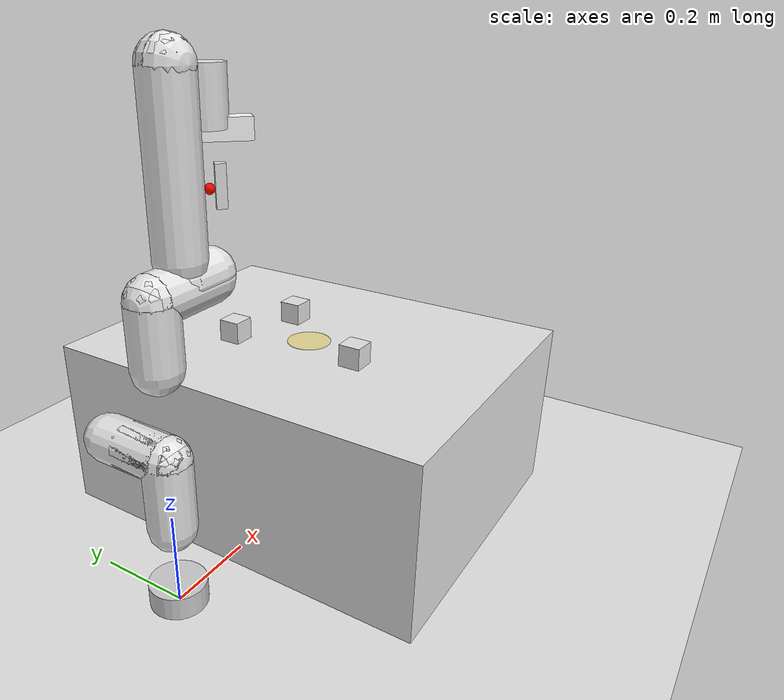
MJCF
<mujoco model="panda_stack">
  <!-- Franka Panda + a table, three free cubes to stack, and a stack-base marker.
       Includes the vendored panda.xml (compiler/meshdir live there); model untouched. -->
  <include file="panda.xml"/>
  <statistic center="0.45 0 0.45" extent="1.1"/>
  <visual>
    <headlight diffuse="0.5 0.5 0.5" ambient="0.35 0.35 0.35" specular="0.1 0.1 0.1"/>
    <rgba haze="0.15 0.25 0.35 1"/>
    <global azimuth="140" elevation="-24" offwidth="1280" offheight="720"/>
    <quality shadowsize="4096"/>
  </visual>
  <asset>
    <texture type="skybox" builtin="gradient" rgb1="0.45 0.6 0.78" rgb2="0.05 0.07 0.12" width="512" height="3072"/>
    <texture type="2d" name="grid" builtin="checker" mark="edge" rgb1="0.16 0.18 0.22" rgb2="0.10 0.11 0.14" markrgb="0.5 0.55 0.65" width="300" height="300"/>
    <material name="grid" texture="grid" texuniform="true" texrepeat="6 6" reflectance="0.1"/>
    <material name="table" rgba="0.45 0.37 0.28 1"/>
    <material name="c1" rgba="0.90 0.36 0.30 1"/>
    <material name="c2" rgba="0.35 0.75 0.45 1"/>
    <material name="c3" rgba="0.35 0.55 0.92 1"/>
  </asset>

  <worldbody>
    <light name="key" pos="0.5 -0.6 2.2" dir="-0.1 0.2 -1" diffuse="0.85 0.85 0.85" specular="0.2 0.2 0.2"/>
    <light name="fill" pos="0.2 0.8 1.6" dir="0.1 -0.4 -1" diffuse="0.3 0.3 0.35"/>
    <geom name="floor" type="plane" size="0 0 0.05" material="grid"/>
    <geom name="table" type="box" pos="0.5 0 0.2" size="0.35 0.45 0.2" material="table" friction="1 .01 .001"/>

    <!-- stack base marker (visual only) -->
    <geom name="base_marker" type="cylinder" size="0.05 0.001" pos="0.48 0.0 0.401"
      rgba="0.95 0.85 0.30 0.5" contype="0" conaffinity="0"/>

    <!-- three free cubes (5 cm) to be stacked -->
    <body name="cube1" pos="0.40 0.15 0.425">
      <freejoint/>
      <geom name="cube1" type="box" size="0.025 0.025 0.025" mass="0.05" material="c1"
        friction="1.4 .02 .001" condim="4" solref="0.01 1"/>
    </body>
    <body name="cube2" pos="0.57 0.10 0.425">
      <freejoint/>
      <geom name="cube2" type="box" size="0.025 0.025 0.025" mass="0.05" material="c2"
        friction="1.4 .02 .001" condim="4" solref="0.01 1"/>
    </body>
    <body name="cube3" pos="0.43 -0.15 0.425">
      <freejoint/>
      <geom name="cube3" type="box" size="0.025 0.025 0.025" mass="0.05" material="c3"
        friction="1.4 .02 .001" condim="4" solref="0.01 1"/>
    </body>

    <camera name="track_cam" pos="1.05 -0.95 0.95" xyaxes="0.7 0.72 0 -0.28 0.27 0.92"/>
    <camera name="front_cam" pos="1.25 0 0.7" xyaxes="0 1 0 -0.4 0 0.9"/>
  </worldbody>
</mujoco>

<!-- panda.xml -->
<mujoco model="franka_panda">
  <compiler angle="radian" meshdir="."/>

  <default>
    <joint damping="1" armature="0.1"/>
    <!-- Visual settings for the robot links -->
    <geom type="capsule" rgba="0.9 0.9 0.9 1" size="0.05"/>
    <site rgba="1 0 0 1" size="0.01"/>
  </default>

  <asset>
    <!-- We use procedural textures or colors instead of meshes for simplicity -->
  </asset>

  <worldbody>
    <!-- Robot Base -->
    <body name="link0" pos="0 0 0">
      <geom type="cylinder" fromto="0 0 0 0 0 0.05" size="0.06" rgba="0.8 0.8 0.8 1"/>

      <!-- Joint 1 -->
      <body name="link1" pos="0 0 0.333">
        <joint name="joint1" axis="0 0 1" range="-2.8973 2.8973"/>
        <geom fromto="0 0 0 0 0 -0.15"/>
        <geom fromto="0 0 0 0 0.1 0" size="0.05"/>

        <!-- Joint 2 -->
        <body name="link2" pos="0 0 0" quat="0.707107 -0.707107 0 0">
          <joint name="joint2" axis="0 0 1" range="-1.7628 1.7628"/>
          <geom fromto="0 0 0 0 0 0.15"/>

          <!-- Joint 3 -->
          <body name="link3" pos="0 -0.316 0" quat="0.707107 0.707107 0 0">
            <joint name="joint3" axis="0 0 1" range="-2.8973 2.8973"/>
            <geom fromto="0 0 0 0 0 -0.125"/>
            <geom fromto="0 0 0 0.15 0 0" size="0.05"/>

            <!-- Joint 4 -->
            <body name="link4" pos="0.15 0 0.01" quat="0.707107 0.707107 0 0">
              <joint name="joint4" axis="0 0 1" range="-3.0718 -0.0698"/>
              <geom fromto="0 0 0 -0.075 0 0"/>

              <!-- Joint 5 -->
              <body name="link5" pos="-0.0725 0.36 0" quat="0.707107 -0.707107 0 0">
                <joint name="joint5" axis="0 0 1" range="-2.8973 2.8973"/>
                <geom fromto="0 0 0 0 0 -0.3175"/>

                <!-- Joint 6 -->
                <body name="link6" pos="0 0 0" quat="0.707107 0.707107 0 0">
                  <joint name="joint6" axis="0 0 1" range="-0.0175 3.7525"/>
                  <geom fromto="0 0 0 0 0 0.001"/>

                  <!-- Joint 7 -->
                  <body name="link7" pos="0.088 0 0" quat="0.707107 0.707107 0 0">
                    <joint name="joint7" axis="0 0 1" range="-2.8973 2.8973"/>
                    <geom type="cylinder" fromto="0 0 0 0 0 0.107" size="0.04"/>

                    <!-- Hand -->
                    <body name="hand" pos="0 0 0.107" quat="0.92388 0 0 -0.382683">
                      <geom type="box" size="0.02 0.08 0.02" rgba="1 1 1 1"/>

                      <!-- Attachment Site for IK -->
                      <site name="attachment_site" pos="0 0 0.1034" />

                      <!-- Fingers -->
                      <body name="left_finger" pos="0 0 0.0584">
                          <joint name="finger_joint1" type="slide" axis="0 1 0" range="0 0.04"/>
                          <geom type="box" size="0.01 0.01 0.04" pos="0 0.02 0.04" friction="5 5 0.1" solimp="0.99 0.99 0.001" solref="0.002 1"/>
                        </body>
                        <body name="right_finger" pos="0 0 0.0584">
                          <joint name="finger_joint2" type="slide" axis="0 -1 0" range="0 0.04"/>
                          <geom type="box" size="0.01 0.01 0.04" pos="0 -0.02 0.04" friction="5 5 0.1" solimp="0.99 0.99 0.001" solref="0.002 1"/>
                        </body>
                    </body>
                  </body>
                </body>
              </body>
            </body>
          </body>
        </body>
      </body>
    </body>
  </worldbody>

  <actuator>
    <motor name="ctrl_joint1" joint="joint1" gear="100"/>
    <motor name="ctrl_joint2" joint="joint2" gear="100"/>
    <motor name="ctrl_joint3" joint="joint3" gear="100"/>
    <motor name="ctrl_joint4" joint="joint4" gear="100"/>
    <motor name="ctrl_joint5" joint="joint5" gear="100"/>
    <motor name="ctrl_joint6" joint="joint6" gear="100"/>
    <motor name="ctrl_joint7" joint="joint7" gear="100"/>
    <position name="ctrl_finger1" joint="finger_joint1" kp="100"/>
    <position name="ctrl_finger2" joint="finger_joint2" kp="100"/>
  </actuator>

  <sensor>
     <jointpos name="jp1" joint="joint1"/>
     <jointpos name="jp2" joint="joint2"/>
     <jointpos name="jp3" joint="joint3"/>
     <jointpos name="jp4" joint="joint4"/>
     <jointpos name="jp5" joint="joint5"/>
     <jointpos name="jp6" joint="joint6"/>
     <jointpos name="jp7" joint="joint7"/>
  </sensor>
</mujoco>
